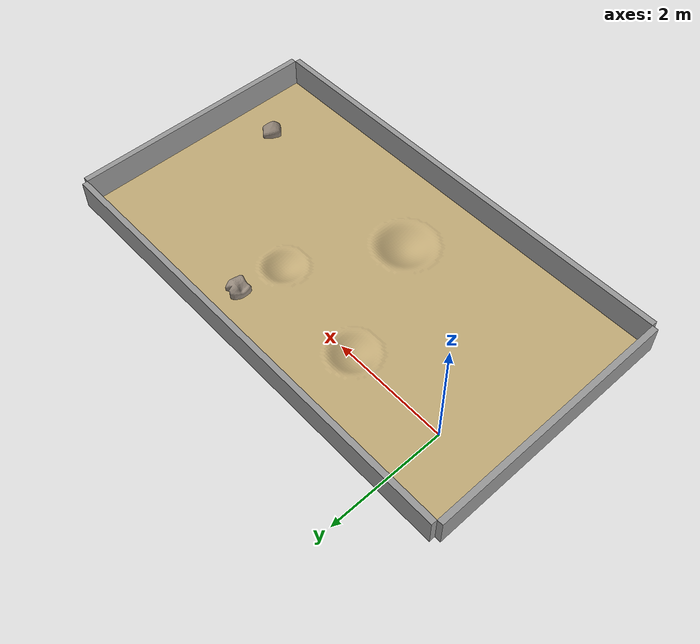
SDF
<sdf version="1.8">
 <world name="moon_yard">
  <gravity>0 0 -9.81</gravity>
  <physics name="1ms" type="ode">
   <max_step_size>0.002</max_step_size>
   <real_time_factor>1.0</real_time_factor>
   <real_time_update_rate>500</real_time_update_rate>
  </physics>
  <plugin filename="ignition-gazebo-physics-system" name="ignition::gazebo::systems::Physics"/>
  <plugin filename="ignition-gazebo-sensors-system" name="ignition::gazebo::systems::Sensors">
   <render_engine>ogre2</render_engine>
  </plugin>
  <plugin filename="ignition-gazebo-scene-broadcaster-system" name="ignition::gazebo::systems::SceneBroadcaster"/>
  <plugin filename="ignition-gazebo-user-commands-system" name="ignition::gazebo::systems::UserCommands"/>
  <plugin filename="ignition-gazebo-imu-system" name="ignition::gazebo::systems::Imu"/>
  <light type="directional" name="sun">
   <pose>0 0 10 0 0 0</pose>
   <diffuse>0.8 0.8 0.8 1</diffuse>
   <specular>0.2 0.2 0.2 1</specular>
   <direction>-0.5 0.1 -0.9</direction>
  </light>
  <include><uri>model://lunar_surface</uri><name>lunar_surface</name><pose>2.95 -1.1 0.0 0 0 0</pose></include>
  <include>
   <uri>model://apriltag_beacon</uri>
   <name>apriltag_beacon</name>
   <pose>0 1.08 0.25 0 0 0</pose>
   <static>true</static>
  </include>
  <model name="wall_north">
   <static>true</static>
   <pose>2.95 1.15 0.25 0 0 0</pose>
   <link name="link">
    <collision name="collision"><geometry><box><size>7.9 0.1 0.5</size></box></geometry></collision>
    <visual name="visual">
     <geometry><box><size>7.9 0.1 0.5</size></box></geometry>
     <material><ambient>0.4 0.4 0.4 1</ambient><diffuse>0.6 0.6 0.6 1</diffuse></material>
    </visual>
   </link>
  </model>
  <model name="wall_south">
   <static>true</static>
   <pose>2.95 -3.35 0.25 0 0 0</pose>
   <link name="link">
    <collision name="collision"><geometry><box><size>7.9 0.1 0.5</size></box></geometry></collision>
    <visual name="visual">
     <geometry><box><size>7.9 0.1 0.5</size></box></geometry>
     <material><ambient>0.4 0.4 0.4 1</ambient><diffuse>0.6 0.6 0.6 1</diffuse></material>
    </visual>
   </link>
  </model>
  <model name="wall_east">
   <static>true</static>
   <pose>6.95 -1.1 0.25 0 0 0</pose>
   <link name="link">
    <collision name="collision"><geometry><box><size>0.1 4.4 0.5</size></box></geometry></collision>
    <visual name="visual">
     <geometry><box><size>0.1 4.4 0.5</size></box></geometry>
     <material><ambient>0.4 0.4 0.4 1</ambient><diffuse>0.6 0.6 0.6 1</diffuse></material>
    </visual>
   </link>
  </model>
  <model name="wall_west">
   <static>true</static>
   <pose>-1.05 -1.1 0.25 0 0 0</pose>
   <link name="link">
    <collision name="collision"><geometry><box><size>0.1 4.4 0.5</size></box></geometry></collision>
    <visual name="visual">
     <geometry><box><size>0.1 4.4 0.5</size></box></geometry>
     <material><ambient>0.4 0.4 0.4 1</ambient><diffuse>0.6 0.6 0.6 1</diffuse></material>
    </visual>
   </link>
  </model>
  <include><uri>model://rock_large</uri><name>rock_4</name><pose>3.8 0.5 0.05 0 0 0.8</pose></include>
  <include><uri>model://rock_small</uri><name>rock_6</name><pose>6.15 -2.1 0.05 0 0 0.3</pose></include>
 </world>
</sdf>

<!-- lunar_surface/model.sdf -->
<sdf version="1.8">
  <model name="lunar_surface">
    <static>true</static>
    <link name="surface_link">
      <visual name="ground_visual">
        <pose>0 0 0 0 0 0</pose>
        <geometry>
          <mesh>
            <uri>model://lunar_surface/meshes/lunar_surface_rulebook.obj</uri>
          </mesh>
        </geometry>
        <material>
          <ambient>0.76 0.67 0.47 1</ambient>
          <diffuse>0.76 0.67 0.47 1</diffuse>
          <specular>0.1 0.1 0.1 1</specular>
          <pbr>
            <metal>
              <albedo_map>model://lunar_surface/meshes/sand_texture.png</albedo_map>
            </metal>
          </pbr>
        </material>
      </visual>
      <collision name="ground_collision">
        <pose>0 0 0 0 0 0</pose>
        <geometry>
          <mesh>
            <uri>model://lunar_surface/meshes/lunar_surface_rulebook.obj</uri>
          </mesh>
        </geometry>
        <surface>
          <friction>
            <ode>
              <mu>0.9</mu>
              <mu2>0.9</mu2>
            </ode>
          </friction>
        </surface>
      </collision>

    </link>
  </model>
</sdf>

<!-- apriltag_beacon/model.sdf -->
<sdf version="1.8">
  <model name="apriltag_beacon">
    <static>true</static>

    <link name="tag_link">
      <visual name="tag_visual">
        <geometry>
          <plane>
            <normal>0 -1 0</normal>
            <size>0.25 0.25</size>
          </plane>
        </geometry>
        <material>
          <ambient>1 1 1 1</ambient>
          <diffuse>1 1 1 1</diffuse>
          <pbr>
            <metal>
              <albedo_map>materials/textures/tag36_11_00000.png</albedo_map>
            </metal>
          </pbr>
        </material>
      </visual>
    </link>

  </model>
</sdf>

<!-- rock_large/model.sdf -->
<sdf version="1.8">
  <model name="rock_large">
    <static>true</static>
    <link name="rock_link">
      <visual name="visual">
        <geometry>
          <mesh>
            <uri>model://rock_large/meshes/rock_large.stl</uri>
          </mesh>
        </geometry>
        <material>
          <ambient>0.5 0.45 0.4 1</ambient>
          <diffuse>0.6 0.55 0.5 1</diffuse>
          <specular>0.2 0.2 0.2 1</specular>
        </material>
      </visual>
      <collision name="collision">
        <geometry>
          <mesh>
            <uri>model://rock_large/meshes/rock_large.stl</uri>
          </mesh>
        </geometry>
        <surface>
          <friction>
            <ode>
              <mu>0.8</mu>
              <mu2>0.8</mu2>
            </ode>
          </friction>
        </surface>
      </collision>
    </link>
  </model>
</sdf>

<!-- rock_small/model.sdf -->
<sdf version="1.8">
  <model name="rock_small">
    <static>true</static>
    <link name="rock_link">
      <visual name="visual">
        <geometry>
          <mesh>
            <uri>model://rock_small/meshes/rock_small.stl</uri>
          </mesh>
        </geometry>
        <material>
          <ambient>0.45 0.4 0.35 1</ambient>
          <diffuse>0.55 0.5 0.45 1</diffuse>
          <specular>0.2 0.2 0.2 1</specular>
        </material>
      </visual>
      <collision name="collision">
        <geometry>
          <mesh>
            <uri>model://rock_small/meshes/rock_small.stl</uri>
          </mesh>
        </geometry>
        <surface>
          <friction>
            <ode>
              <mu>0.8</mu>
              <mu2>0.8</mu2>
            </ode>
          </friction>
        </surface>
      </collision>
    </link>
  </model>
</sdf>
